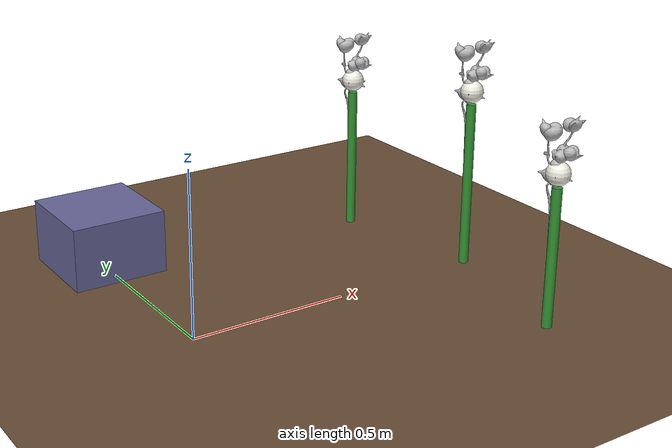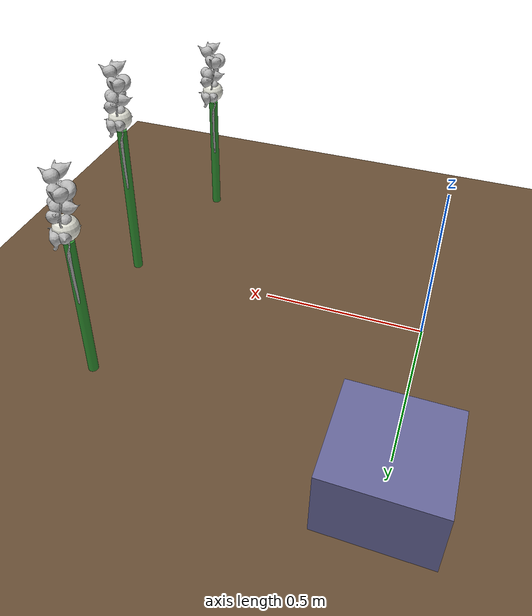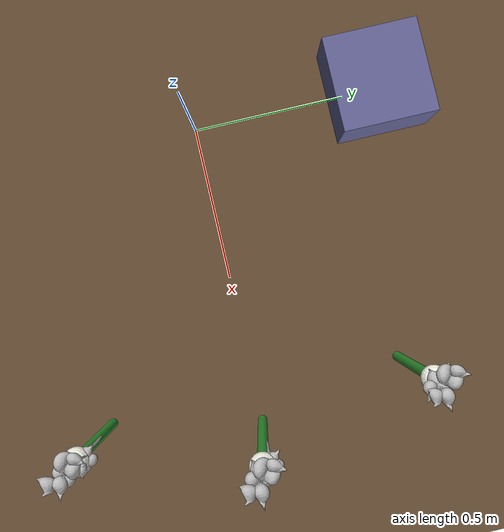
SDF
<?xml version="1.0" ?>
<sdf version="1.6">
  <world name="cotton_field">

    <!-- Physics: 5x speed (step_size 0.005 vs default 0.001) -->
    <physics name="fast_physics" type="dart">
      <max_step_size>0.005</max_step_size>
      <real_time_factor>1.0</real_time_factor>
    </physics>

    <!-- Required Gazebo Sim world plugins -->
    <plugin filename="ignition-gazebo-physics-system"
            name="ignition::gazebo::systems::Physics">
    </plugin>
    <plugin filename="ignition-gazebo-user-commands-system"
            name="ignition::gazebo::systems::UserCommands">
    </plugin>
    <plugin filename="ignition-gazebo-scene-broadcaster-system"
            name="ignition::gazebo::systems::SceneBroadcaster">
    </plugin>
    <plugin filename="ignition-gazebo-sensors-system"
            name="ignition::gazebo::systems::Sensors">
      <render_engine>ogre2</render_engine>
    </plugin>
    <plugin filename="ignition-gazebo-imu-system"
            name="ignition::gazebo::systems::Imu">
    </plugin>

    <!-- Lighting (inline instead of model://sun) -->
    <light type="directional" name="sun">
      <cast_shadows>true</cast_shadows>
      <pose>0 0 10 0 0 0</pose>
      <diffuse>0.8 0.8 0.8 1</diffuse>
      <specular>0.2 0.2 0.2 1</specular>
      <attenuation>
        <range>1000</range>
        <constant>0.9</constant>
        <linear>0.01</linear>
        <quadratic>0.001</quadratic>
      </attenuation>
      <direction>-0.5 0.1 -0.9</direction>
    </light>

    <!-- Ground Plane -->
    <model name="ground_plane">
      <static>true</static>
      <link name="link">
        <collision name="collision">
          <geometry>
            <plane>
              <normal>0 0 1</normal>
              <size>10 10</size>
            </plane>
          </geometry>
        </collision>
        <visual name="visual">
          <geometry>
            <plane>
              <normal>0 0 1</normal>
              <size>10 10</size>
            </plane>
          </geometry>
          <material>
            <ambient>0.3 0.2 0.1 1</ambient>
            <diffuse>0.4 0.3 0.2 1</diffuse>
          </material>
        </visual>
      </link>
    </model>

    <!-- Plant 1: cluster_3 - Right side -->
    <model name="plant_1">
      <static>true</static>
      <pose>0.875 -0.475 0 0 0 0</pose>
      <link name="stem">
        <visual name="stem_visual">
          <pose>0 0 0.21 0 0 0</pose>
          <geometry>
            <cylinder>
              <radius>0.015</radius>
              <length>0.42</length>
            </cylinder>
          </geometry>
          <material>
            <ambient>0.1 0.4 0.1 1</ambient>
            <diffuse>0.2 0.6 0.2 1</diffuse>
          </material>
        </visual>
        <collision name="stem_collision">
          <pose>0 0 0.21 0 0 0</pose>
          <geometry>
            <cylinder>
              <radius>0.015</radius>
              <length>0.42</length>
            </cylinder>
          </geometry>
        </collision>
      </link>
      <!-- Cotton cluster with DAE mesh -->
      <link name="cotton_cluster">
        <pose>0 0 0.42 0 0 0</pose>
        <visual name="cluster_visual">
          <geometry>
            <mesh>
              <uri>model://cotton_cluster/cluster.dae</uri>
              <scale>0.4 0.4 0.4</scale>
            </mesh>
          </geometry>
        </visual>
        <collision name="cluster_collision">
          <geometry>
            <mesh>
              <uri>model://cotton_cluster/cluster.dae</uri>
              <scale>0.4 0.4 0.4</scale>
            </mesh>
          </geometry>
        </collision>
      </link>
      <joint name="cluster_joint_1" type="fixed">
        <parent>stem</parent>
        <child>cotton_cluster</child>
      </joint>
    </model>

    <!-- Plant 2: cluster_2 - Center -->
    <model name="plant_2">
      <static>true</static>
      <pose>0.975 0.0 0 0 0 0</pose>
      <link name="stem">
        <visual name="stem_visual">
          <pose>0 0 0.26 0 0 0</pose>
          <geometry>
            <cylinder>
              <radius>0.015</radius>
              <length>0.52</length>
            </cylinder>
          </geometry>
          <material>
            <ambient>0.1 0.4 0.1 1</ambient>
            <diffuse>0.2 0.6 0.2 1</diffuse>
          </material>
        </visual>
        <collision name="stem_collision">
          <pose>0 0 0.26 0 0 0</pose>
          <geometry>
            <cylinder>
              <radius>0.015</radius>
              <length>0.52</length>
            </cylinder>
          </geometry>
        </collision>
      </link>
      <!-- Cotton cluster with DAE mesh -->
      <link name="cotton_cluster">
        <pose>0 0 0.52 0 0 0</pose>
        <visual name="cluster_visual">
          <geometry>
            <mesh>
              <uri>model://cotton_cluster/cluster.dae</uri>
              <scale>0.4 0.4 0.4</scale>
            </mesh>
          </geometry>
        </visual>
        <collision name="cluster_collision">
          <geometry>
            <mesh>
              <uri>model://cotton_cluster/cluster.dae</uri>
              <scale>0.4 0.4 0.4</scale>
            </mesh>
          </geometry>
        </collision>
      </link>
      <joint name="cluster_joint_2" type="fixed">
        <parent>stem</parent>
        <child>cotton_cluster</child>
      </joint>
    </model>

    <!-- Plant 3: cluster_1 - Left side -->
    <model name="plant_3">
      <static>true</static>
      <pose>0.875 0.475 0 0 0 0</pose>
      <link name="stem">
        <visual name="stem_visual">
          <pose>0 0 0.23 0 0 0</pose>
          <geometry>
            <cylinder>
              <radius>0.015</radius>
              <length>0.46</length>
            </cylinder>
          </geometry>
          <material>
            <ambient>0.1 0.4 0.1 1</ambient>
            <diffuse>0.2 0.6 0.2 1</diffuse>
          </material>
        </visual>
        <collision name="stem_collision">
          <pose>0 0 0.23 0 0 0</pose>
          <geometry>
            <cylinder>
              <radius>0.015</radius>
              <length>0.46</length>
            </cylinder>
          </geometry>
        </collision>
      </link>
      <!-- Cotton cluster with DAE mesh -->
      <link name="cotton_cluster">
        <pose>0 0 0.46 0 0 0</pose>
        <visual name="cluster_visual">
          <geometry>
            <mesh>
              <uri>model://cotton_cluster/cluster.dae</uri>
              <scale>0.4 0.4 0.4</scale>
            </mesh>
          </geometry>
        </visual>
        <collision name="cluster_collision">
          <geometry>
            <mesh>
              <uri>model://cotton_cluster/cluster.dae</uri>
              <scale>0.4 0.4 0.4</scale>
            </mesh>
          </geometry>
        </collision>
      </link>
      <joint name="cluster_joint_3" type="fixed">
        <parent>stem</parent>
        <child>cotton_cluster</child>
      </joint>
    </model>

    <!-- ===== Dynamic Cotton Bolls (graspable) ===== -->
    <!-- These are separate from the static plants so the gripper can pick them up -->

    <!-- Cotton Boll 1: at cluster_1 (left side plant_3) -->
    <model name="cotton_boll_1">
      <static>false</static>
      <pose>0.875 0.475 0.50 0 0 0</pose>
      <link name="boll">
        <inertial>
          <mass>0.01</mass>
          <inertia>
            <ixx>5.0e-06</ixx><ixy>0</ixy><ixz>0</ixz>
            <iyy>5.0e-06</iyy><iyz>0</iyz>
            <izz>5.0e-06</izz>
          </inertia>
        </inertial>
        <collision name="collision">
          <geometry>
            <sphere><radius>0.035</radius></sphere>
          </geometry>
          <surface>
            <friction>
              <ode><mu>1.0</mu><mu2>1.0</mu2></ode>
            </friction>
          </surface>
        </collision>
        <visual name="visual">
          <geometry>
            <sphere><radius>0.035</radius></sphere>
          </geometry>
          <material>
            <ambient>0.9 0.9 0.85 1</ambient>
            <diffuse>0.95 0.95 0.9 1</diffuse>
          </material>
        </visual>
      </link>
    </model>

    <!-- Cotton Boll 2: at cluster_2 (center plant_2) -->
    <model name="cotton_boll_2">
      <static>false</static>
      <pose>0.975 0.0 0.56 0 0 0</pose>
      <link name="boll">
        <inertial>
          <mass>0.01</mass>
          <inertia>
            <ixx>5.0e-06</ixx><ixy>0</ixy><ixz>0</ixz>
            <iyy>5.0e-06</iyy><iyz>0</iyz>
            <izz>5.0e-06</izz>
          </inertia>
        </inertial>
        <collision name="collision">
          <geometry>
            <sphere><radius>0.035</radius></sphere>
          </geometry>
          <surface>
            <friction>
              <ode><mu>1.0</mu><mu2>1.0</mu2></ode>
            </friction>
          </surface>
        </collision>
        <visual name="visual">
          <geometry>
            <sphere><radius>0.035</radius></sphere>
          </geometry>
          <material>
            <ambient>0.9 0.9 0.85 1</ambient>
            <diffuse>0.95 0.95 0.9 1</diffuse>
          </material>
        </visual>
      </link>
    </model>

    <!-- Cotton Boll 3: at cluster_3 (right side plant_1) -->
    <model name="cotton_boll_3">
      <static>false</static>
      <pose>0.875 -0.475 0.46 0 0 0</pose>
      <link name="boll">
        <inertial>
          <mass>0.01</mass>
          <inertia>
            <ixx>5.0e-06</ixx><ixy>0</ixy><ixz>0</ixz>
            <iyy>5.0e-06</iyy><iyz>0</iyz>
            <izz>5.0e-06</izz>
          </inertia>
        </inertial>
        <collision name="collision">
          <geometry>
            <sphere><radius>0.035</radius></sphere>
          </geometry>
          <surface>
            <friction>
              <ode><mu>1.0</mu><mu2>1.0</mu2></ode>
            </friction>
          </surface>
        </collision>
        <visual name="visual">
          <geometry>
            <sphere><radius>0.035</radius></sphere>
          </geometry>
          <material>
            <ambient>0.9 0.9 0.85 1</ambient>
            <diffuse>0.95 0.95 0.9 1</diffuse>
          </material>
        </visual>
      </link>
    </model>

    <!-- Reservoir: Left side of robot -->
    <model name="reservoir">
      <static>true</static>
      <pose>0 0.6 0 0 0 0</pose>
      <link name="box">
        <visual name="visual">
          <pose>0 0 0.1 0 0 0</pose>
          <geometry>
            <box>
              <size>0.3 0.3 0.2</size>
            </box>
          </geometry>
          <material>
            <ambient>0.3 0.3 0.5 1</ambient>
            <diffuse>0.4 0.4 0.6 1</diffuse>
          </material>
        </visual>
        <collision name="collision">
          <pose>0 0 0.1 0 0 0</pose>
          <geometry>
            <box>
              <size>0.3 0.3 0.2</size>
            </box>
          </geometry>
        </collision>
      </link>
    </model>

  </world>
</sdf>
